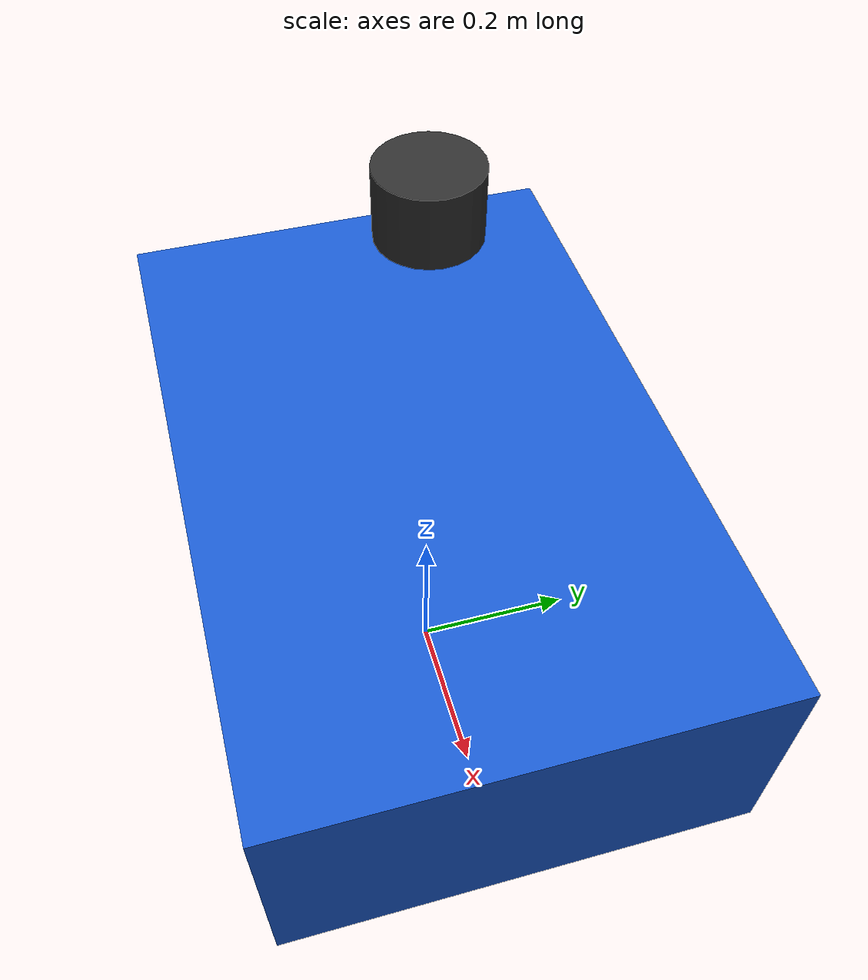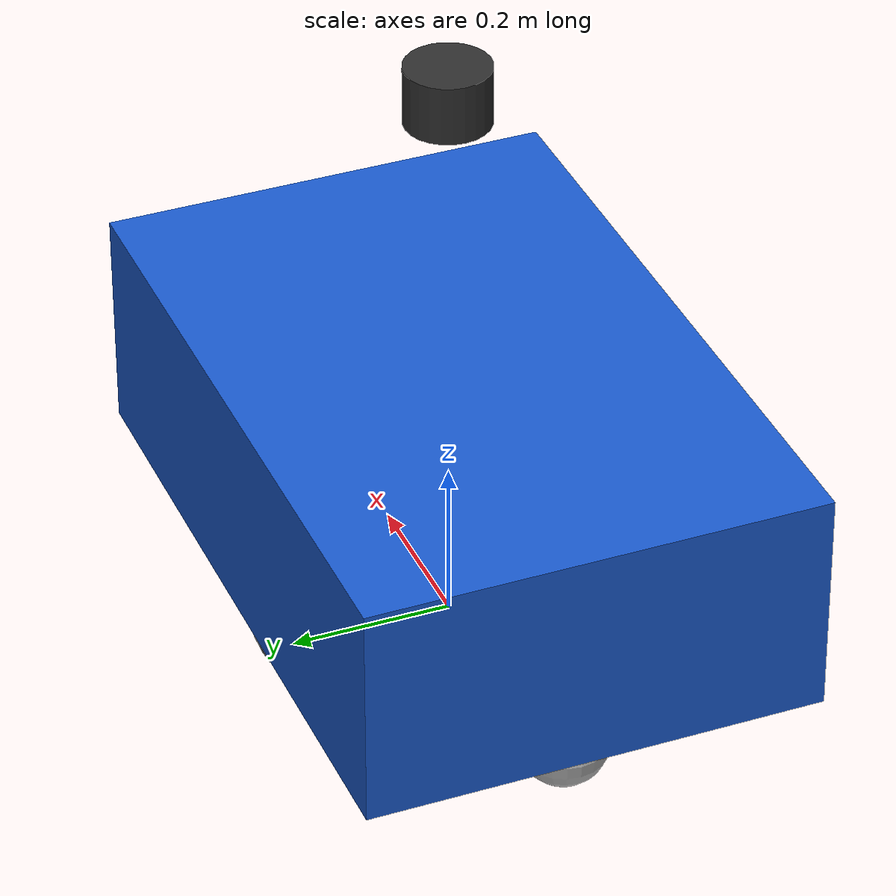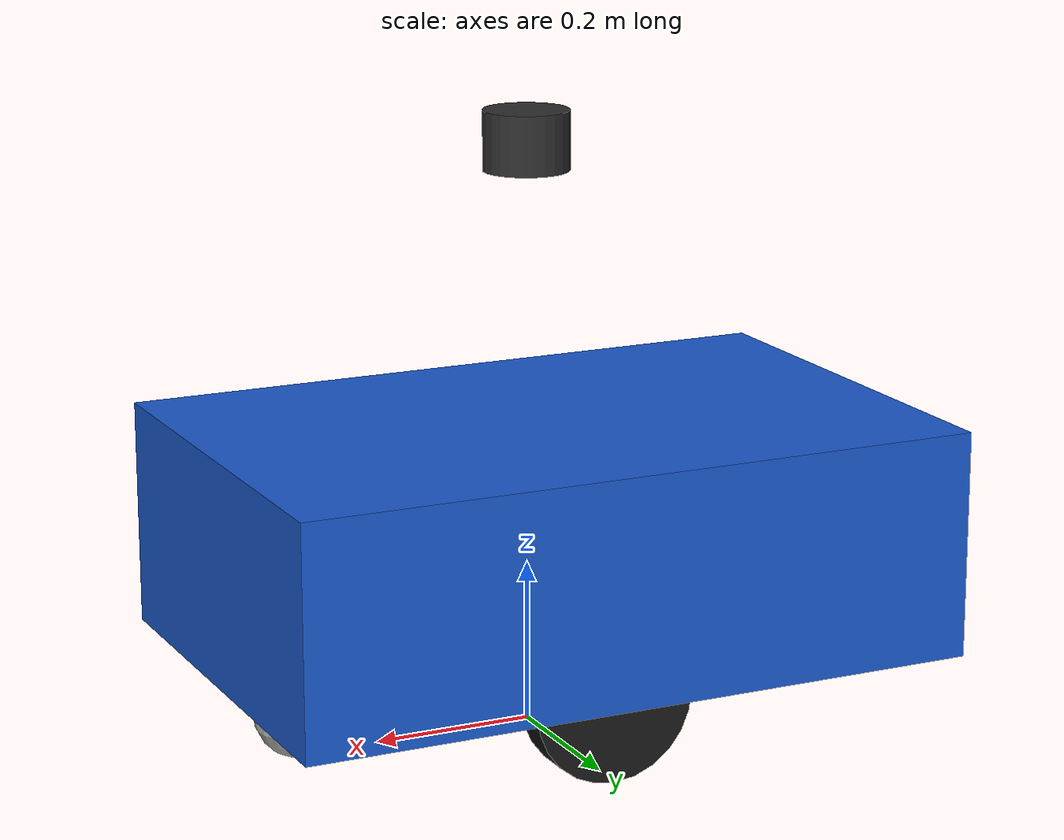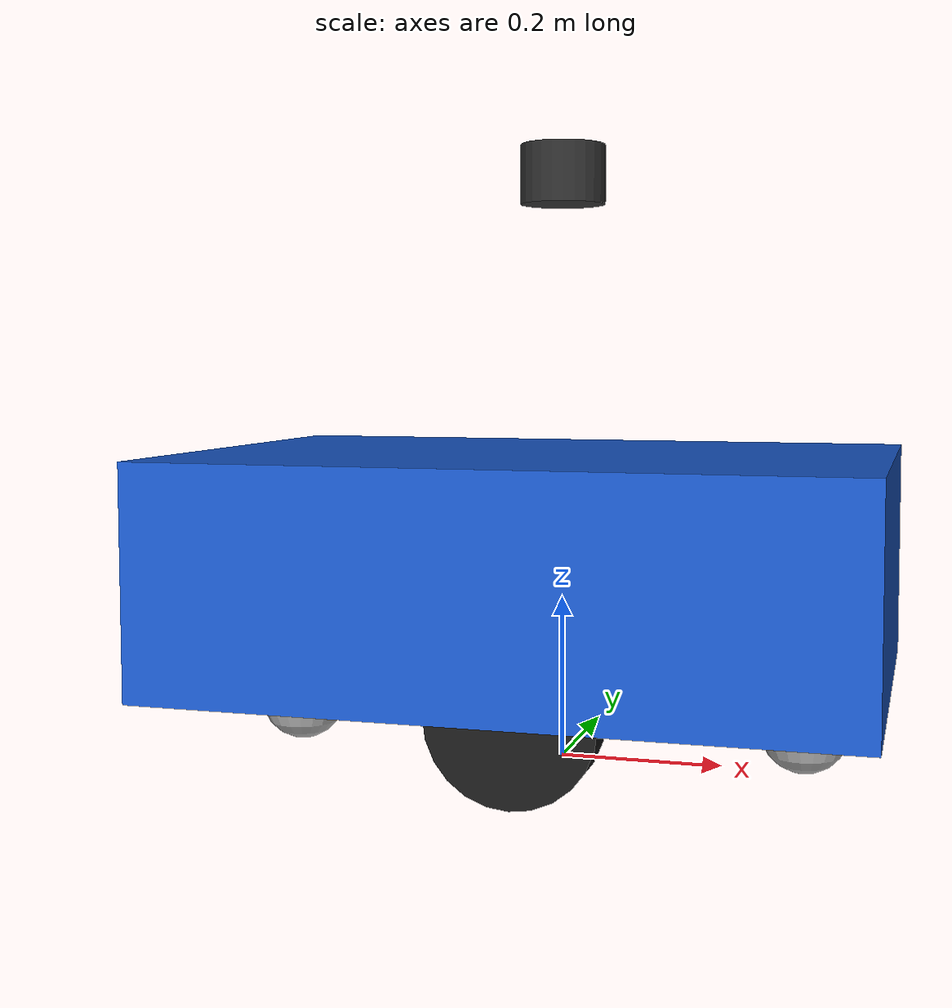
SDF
<?xml version="1.0"?>
<sdf version="1.9">
  <model name="ROBOTBASE_TF_PREFIX">
    <link name="base_footprint"/>

    <link name="base_link">
      <pose relative_to="base_footprint">-0.025 0 0.24 0 0 0</pose>
      <inertial>
        <mass>40.0</mass>
        <inertia>
          <ixx>1.30</ixx>
          <ixy>0.0</ixy>
          <ixz>0.0</ixz>
          <iyy>2.60</iyy>
          <iyz>0.0</iyz>
          <izz>3.20</izz>
        </inertia>
      </inertial>
      <visual name="body_visual">
        <geometry><box><size>0.85 0.56 0.28</size></box></geometry>
        <material>
          <ambient>0.08 0.25 0.55 1</ambient>
          <diffuse>0.10 0.35 0.80 1</diffuse>
          <specular>0.20 0.20 0.20 1</specular>
        </material>
      </visual>
      <collision name="body_collision">
        <geometry><box><size>0.85 0.56 0.28</size></box></geometry>
      </collision>
    </link>

    <link name="left_wheel">
      <pose relative_to="base_footprint">0 0.2175 0.10 0 0 0</pose>
      <inertial>
        <mass>2.0</mass>
        <inertia>
          <ixx>0.011</ixx><ixy>0</ixy><ixz>0</ixz>
          <iyy>0.020</iyy><iyz>0</iyz><izz>0.011</izz>
        </inertia>
      </inertial>
      <visual name="visual">
        <pose>0 0 0 1.5707963 0 0</pose>
        <geometry><cylinder><radius>0.10</radius><length>0.045</length></cylinder></geometry>
        <material><ambient>0.06 0.06 0.06 1</ambient><diffuse>0.10 0.10 0.10 1</diffuse></material>
      </visual>
      <collision name="collision">
        <pose>0 0 0 1.5707963 0 0</pose>
        <geometry><cylinder><radius>0.10</radius><length>0.045</length></cylinder></geometry>
        <surface><friction><ode><mu>1.5</mu><mu2>1.5</mu2></ode></friction></surface>
      </collision>
    </link>

    <link name="right_wheel">
      <pose relative_to="base_footprint">0 -0.2175 0.10 0 0 0</pose>
      <inertial>
        <mass>2.0</mass>
        <inertia>
          <ixx>0.011</ixx><ixy>0</ixy><ixz>0</ixz>
          <iyy>0.020</iyy><iyz>0</iyz><izz>0.011</izz>
        </inertia>
      </inertial>
      <visual name="visual">
        <pose>0 0 0 1.5707963 0 0</pose>
        <geometry><cylinder><radius>0.10</radius><length>0.045</length></cylinder></geometry>
        <material><ambient>0.06 0.06 0.06 1</ambient><diffuse>0.10 0.10 0.10 1</diffuse></material>
      </visual>
      <collision name="collision">
        <pose>0 0 0 1.5707963 0 0</pose>
        <geometry><cylinder><radius>0.10</radius><length>0.045</length></cylinder></geometry>
        <surface><friction><ode><mu>1.5</mu><mu2>1.5</mu2></ode></friction></surface>
      </collision>
    </link>

    <link name="front_caster">
      <pose relative_to="base_footprint">0.30 0 0.055 0 0 0</pose>
      <inertial><mass>0.5</mass><inertia><ixx>0.001</ixx><iyy>0.001</iyy><izz>0.001</izz></inertia></inertial>
      <visual name="visual"><geometry><sphere><radius>0.055</radius></sphere></geometry></visual>
      <collision name="collision">
        <geometry><sphere><radius>0.055</radius></sphere></geometry>
        <surface><friction><ode><mu>0.02</mu><mu2>0.02</mu2></ode></friction></surface>
      </collision>
    </link>

    <link name="rear_caster">
      <pose relative_to="base_footprint">-0.35 0 0.055 0 0 0</pose>
      <inertial><mass>0.5</mass><inertia><ixx>0.001</ixx><iyy>0.001</iyy><izz>0.001</izz></inertia></inertial>
      <visual name="visual"><geometry><sphere><radius>0.055</radius></sphere></geometry></visual>
      <collision name="collision">
        <geometry><sphere><radius>0.055</radius></sphere></geometry>
        <surface><friction><ode><mu>0.02</mu><mu2>0.02</mu2></ode></friction></surface>
      </collision>
    </link>

    <link name="lidar_link">
      <pose relative_to="base_footprint">0 0 0.72 0 0 0</pose>
      <inertial><mass>0.85</mass><inertia><ixx>0.003</ixx><iyy>0.003</iyy><izz>0.003</izz></inertia></inertial>
      <visual name="visual">
        <geometry><cylinder><radius>0.052</radius><length>0.072</length></cylinder></geometry>
        <material><ambient>0.12 0.12 0.12 1</ambient><diffuse>0.18 0.18 0.18 1</diffuse></material>
      </visual>
      <collision name="collision"><geometry><cylinder><radius>0.052</radius><length>0.072</length></cylinder></geometry></collision>
      <sensor name="vlp16" type="gpu_lidar">
        <topic>/ROBOTBASE_TF_PREFIX/velodyne_points</topic>
        <update_rate>10</update_rate>
        <gz_frame_id>ROBOTBASE_TF_PREFIX/lidar_link</gz_frame_id>
        <lidar>
          <scan>
            <horizontal>
              <samples>720</samples><resolution>1</resolution>
              <min_angle>-3.14159265</min_angle><max_angle>3.14159265</max_angle>
            </horizontal>
            <vertical>
              <samples>16</samples><resolution>1</resolution>
              <min_angle>-0.261799</min_angle><max_angle>0.261799</max_angle>
            </vertical>
          </scan>
          <range><min>0.20</min><max>30.0</max><resolution>0.01</resolution></range>
          <noise><type>gaussian</type><mean>0.0</mean><stddev>0.01</stddev></noise>
        </lidar>
        <always_on>true</always_on>
        <visualize>true</visualize>
      </sensor>
    </link>

    <link name="imu_link">
      <pose relative_to="base_footprint">0 0 0.28 0 0 0</pose>
      <inertial><mass>0.02</mass><inertia><ixx>0.0001</ixx><iyy>0.0001</iyy><izz>0.0001</izz></inertia></inertial>
      <visual name="visual">
        <geometry><box><size>0.05 0.04 0.015</size></box></geometry>
        <material><ambient>0.05 0.55 0.15 1</ambient><diffuse>0.05 0.75 0.20 1</diffuse></material>
      </visual>
      <sensor name="imu" type="imu">
        <topic>/ROBOTBASE_TF_PREFIX/imu</topic>
        <update_rate>100</update_rate>
        <gz_frame_id>ROBOTBASE_TF_PREFIX/imu_link</gz_frame_id>
        <imu>
          <angular_velocity>
            <x><noise type="gaussian"><mean>0</mean><stddev>0.0002</stddev></noise></x>
            <y><noise type="gaussian"><mean>0</mean><stddev>0.0002</stddev></noise></y>
            <z><noise type="gaussian"><mean>0</mean><stddev>0.0002</stddev></noise></z>
          </angular_velocity>
          <linear_acceleration>
            <x><noise type="gaussian"><mean>0</mean><stddev>0.017</stddev></noise></x>
            <y><noise type="gaussian"><mean>0</mean><stddev>0.017</stddev></noise></y>
            <z><noise type="gaussian"><mean>0</mean><stddev>0.017</stddev></noise></z>
          </linear_acceleration>
        </imu>
        <always_on>true</always_on>
      </sensor>
    </link>

    <joint name="footprint_to_base" type="fixed"><parent>base_footprint</parent><child>base_link</child></joint>
    <joint name="left_wheel_joint" type="revolute">
      <parent>base_footprint</parent><child>left_wheel</child>
      <axis><xyz expressed_in="base_footprint">0 1 0</xyz><limit><lower>-1e16</lower><upper>1e16</upper><effort>200</effort><velocity>40</velocity></limit></axis>
    </joint>
    <joint name="right_wheel_joint" type="revolute">
      <parent>base_footprint</parent><child>right_wheel</child>
      <axis><xyz expressed_in="base_footprint">0 1 0</xyz><limit><lower>-1e16</lower><upper>1e16</upper><effort>200</effort><velocity>40</velocity></limit></axis>
    </joint>
    <joint name="front_caster_joint" type="ball"><parent>base_footprint</parent><child>front_caster</child></joint>
    <joint name="rear_caster_joint" type="ball"><parent>base_footprint</parent><child>rear_caster</child></joint>
    <joint name="lidar_joint" type="fixed"><parent>base_footprint</parent><child>lidar_link</child></joint>
    <joint name="imu_joint" type="fixed"><parent>base_footprint</parent><child>imu_link</child></joint>

    <plugin filename="gz-sim-imu-system" name="gz::sim::systems::Imu"/>
    <plugin filename="gz-sim-diff-drive-system" name="gz::sim::systems::DiffDrive">
      <left_joint>left_wheel_joint</left_joint>
      <right_joint>right_wheel_joint</right_joint>
      <wheel_separation>0.435</wheel_separation>
      <wheel_radius>0.10</wheel_radius>
      <topic>/ROBOTBASE_TF_PREFIX/cmd_vel</topic>
      <odom_topic>/ROBOTBASE_TF_PREFIX/odom</odom_topic>
      <tf_topic>/ROBOTBASE_TF_PREFIX/tf</tf_topic>
      <child_frame_id>ROBOTBASE_TF_PREFIX/base_footprint</child_frame_id>
      <odom_publish_frequency>50</odom_publish_frequency>
      <max_linear_acceleration>0.9</max_linear_acceleration>
      <min_linear_acceleration>-0.9</min_linear_acceleration>
      <max_angular_acceleration>1.5</max_angular_acceleration>
      <min_angular_acceleration>-1.5</min_angular_acceleration>
      <max_linear_velocity>0.9</max_linear_velocity>
      <min_linear_velocity>-0.6</min_linear_velocity>
      <max_angular_velocity>0.9</max_angular_velocity>
      <min_angular_velocity>-0.9</min_angular_velocity>
    </plugin>
    <plugin filename="gz-sim-joint-state-publisher-system" name="gz::sim::systems::JointStatePublisher">
      <topic>/ROBOTBASE_TF_PREFIX/joint_states</topic>
      <joint_name>left_wheel_joint</joint_name>
      <joint_name>right_wheel_joint</joint_name>
    </plugin>
  </model>
</sdf>
